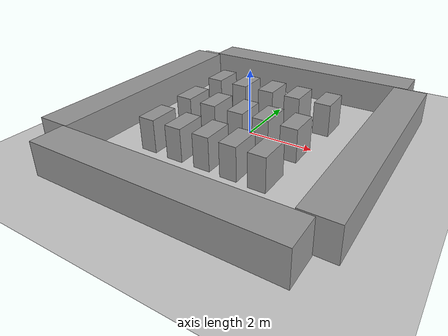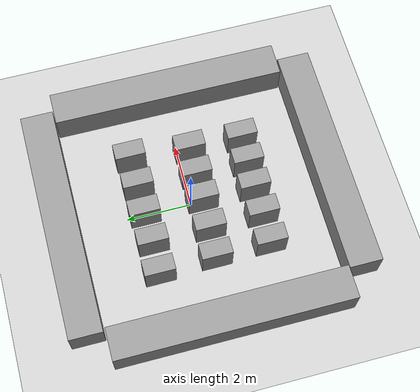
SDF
<sdf version="1.6">
 <world name="default">
  <light name="sun" type="directional">
   <pose>0 0 10 0 -0 0</pose>
   <diffuse>0.8 0.8 0.8 1</diffuse>
   <specular>0.2 0.2 0.2 1</specular>
   <attenuation>
    <range>1000</range>
    <constant>0.9</constant>
    <linear>0.01</linear>
    <quadratic>0.001</quadratic>
   </attenuation>
   <direction>-0.5 0.1 -0.9</direction>
  </light>
  <model name="ground_plane">
   <static>1</static>
   <link name="link">
    <collision name="collision">
     <geometry><plane><normal>0 0 1</normal><size>100 100</size></plane></geometry>
     <surface>
      <contact><collide_bitmask>65535</collide_bitmask></contact>
      <friction><ode><mu>100</mu><mu2>50</mu2></ode></friction>
     </surface>
    </collision>
    <visual name="visual">
     <cast_shadows>0</cast_shadows>
     <geometry><plane><normal>0 0 1</normal><size>100 100</size></plane></geometry>
     <material>
      <script><uri>file://media/materials/scripts/gazebo.material</uri><name>Gazebo/Grey</name></script>
     </material>
    </visual>
   </link>
  </model>
  <gravity>0 0 -9.8</gravity>
  <magnetic_field>6e-06 2.3e-05 -4.2e-05</magnetic_field>
  <atmosphere type="adiabatic"/>
  <physics name="default_physics" default="0" type="ode">
   <max_step_size>0.001</max_step_size>
   <real_time_factor>1</real_time_factor>
   <real_time_update_rate>1000</real_time_update_rate>
  </physics>
  <scene><ambient>0.4 0.4 0.4 1</ambient><background>0.7 0.7 0.7 1</background><shadows>1</shadows></scene>
  <spherical_coordinates>
   <surface_model>EARTH_WGS84</surface_model>
   <latitude_deg>0</latitude_deg>
   <longitude_deg>0</longitude_deg>
   <elevation>0</elevation>
   <heading_deg>0</heading_deg>
  </spherical_coordinates>
  <model name="unit_box">
   <pose>-1 1.44709 0.5 0 -0 3e-06</pose>
   <link name="link">
    <inertial>
     <mass>1</mass>
     <inertia>
      <ixx>0.166667</ixx>
      <ixy>0</ixy>
      <ixz>0</ixz>
      <iyy>0.166667</iyy>
      <iyz>0</iyz>
      <izz>0.166667</izz>
     </inertia>
    </inertial>
    <collision name="collision"><geometry><box><size>0.505028 0.924101 1</size></box></geometry></collision>
    <visual name="visual">
     <geometry><box><size>0.505028 0.924101 1</size></box></geometry>
     <material>
      <script><name>Gazebo/Grey</name><uri>file://media/materials/scripts/gazebo.material</uri></script>
     </material>
    </visual>
   </link>
  </model>
  <model name="unit_box_clone">
   <pose>-0.047301 1.46771 0.5 0 -0 3e-06</pose>
   <link name="link">
    <inertial>
     <mass>1</mass>
     <inertia>
      <ixx>0.166667</ixx>
      <ixy>0</ixy>
      <ixz>0</ixz>
      <iyy>0.166667</iyy>
      <iyz>0</iyz>
      <izz>0.166667</izz>
     </inertia>
    </inertial>
    <collision name="collision"><geometry><box><size>0.505028 0.924103 1</size></box></geometry></collision>
    <visual name="visual">
     <geometry><box><size>0.505028 0.924103 1</size></box></geometry>
     <material>
      <script><name>Gazebo/Grey</name><uri>file://media/materials/scripts/gazebo.material</uri></script>
     </material>
    </visual>
   </link>
  </model>
  <model name="unit_box_clone_0">
   <pose>0.866441 1.44857 0.5 0 -0 3e-06</pose>
   <link name="link">
    <inertial>
     <mass>1</mass>
     <inertia>
      <ixx>0.166667</ixx>
      <ixy>0</ixy>
      <ixz>0</ixz>
      <iyy>0.166667</iyy>
      <iyz>0</iyz>
      <izz>0.166667</izz>
     </inertia>
    </inertial>
    <collision name="collision"><geometry><box><size>0.505028 0.924103 1</size></box></geometry></collision>
    <visual name="visual">
     <geometry><box><size>0.505028 0.924103 1</size></box></geometry>
     <material>
      <script><name>Gazebo/Grey</name><uri>file://media/materials/scripts/gazebo.material</uri></script>
     </material>
    </visual>
   </link>
  </model>
  <model name="unit_box_clone_1">
   <pose>1.84425 1.46096 0.5 0 -0 3e-06</pose>
   <link name="link">
    <inertial>
     <mass>1</mass>
     <inertia>
      <ixx>0.166667</ixx>
      <ixy>0</ixy>
      <ixz>0</ixz>
      <iyy>0.166667</iyy>
      <iyz>0</iyz>
      <izz>0.166667</izz>
     </inertia>
    </inertial>
    <collision name="collision"><geometry><box><size>0.505028 0.924103 1</size></box></geometry></collision>
    <visual name="visual">
     <geometry><box><size>0.505028 0.924103 1</size></box></geometry>
     <material>
      <script><name>Gazebo/Grey</name><uri>file://media/materials/scripts/gazebo.material</uri></script>
     </material>
    </visual>
   </link>
  </model>
  <model name="unit_box_clone_2">
   <pose>-1.96392 1.47977 0.5 0 -0 3e-06</pose>
   <link name="link">
    <inertial>
     <mass>1</mass>
     <inertia>
      <ixx>0.166667</ixx>
      <ixy>0</ixy>
      <ixz>0</ixz>
      <iyy>0.166667</iyy>
      <iyz>0</iyz>
      <izz>0.166667</izz>
     </inertia>
    </inertial>
    <collision name="collision"><geometry><box><size>0.505028 0.924103 1</size></box></geometry></collision>
    <visual name="visual">
     <geometry><box><size>0.505028 0.924103 1</size></box></geometry>
     <material>
      <script><name>Gazebo/Grey</name><uri>file://media/materials/scripts/gazebo.material</uri></script>
     </material>
    </visual>
   </link>
  </model>
  <model name="unit_box_clone_1_clone">
   <pose>-1.90062 -0.244606 0.5 0 -0 3e-06</pose>
   <link name="link">
    <inertial>
     <mass>1</mass>
     <inertia>
      <ixx>0.166667</ixx>
      <ixy>0</ixy>
      <ixz>0</ixz>
      <iyy>0.166667</iyy>
      <iyz>0</iyz>
      <izz>0.166667</izz>
     </inertia>
    </inertial>
    <collision name="collision"><geometry><box><size>0.505028 0.924103 1</size></box></geometry></collision>
    <visual name="visual">
     <geometry><box><size>0.505028 0.924103 1</size></box></geometry>
     <material>
      <script><name>Gazebo/Grey</name><uri>file://media/materials/scripts/gazebo.material</uri></script>
     </material>
    </visual>
   </link>
  </model>
  <model name="unit_box_clone_1_clone_0">
   <pose>-0.984742 -0.300577 0.5 0 -0 3e-06</pose>
   <link name="link">
    <inertial>
     <mass>1</mass>
     <inertia>
      <ixx>0.166667</ixx>
      <ixy>0</ixy>
      <ixz>0</ixz>
      <iyy>0.166667</iyy>
      <iyz>0</iyz>
      <izz>0.166667</izz>
     </inertia>
    </inertial>
    <collision name="collision"><geometry><box><size>0.505028 0.924103 1</size></box></geometry></collision>
    <visual name="visual">
     <geometry><box><size>0.505028 0.924103 1</size></box></geometry>
     <material>
      <script><name>Gazebo/Grey</name><uri>file://media/materials/scripts/gazebo.material</uri></script>
     </material>
    </visual>
   </link>
  </model>
  <model name="unit_box_clone_1_clone_1">
   <pose>-0.033471 -0.32584 0.5 0 -0 3e-06</pose>
   <link name="link">
    <inertial>
     <mass>1</mass>
     <inertia>
      <ixx>0.166667</ixx>
      <ixy>0</ixy>
      <ixz>0</ixz>
      <iyy>0.166667</iyy>
      <iyz>0</iyz>
      <izz>0.166667</izz>
     </inertia>
    </inertial>
    <collision name="collision"><geometry><box><size>0.505028 0.924103 1</size></box></geometry></collision>
    <visual name="visual">
     <geometry><box><size>0.505028 0.924103 1</size></box></geometry>
     <material>
      <script><name>Gazebo/Grey</name><uri>file://media/materials/scripts/gazebo.material</uri></script>
     </material>
    </visual>
   </link>
  </model>
  <model name="unit_box_clone_1_clone_2">
   <pose>0.798051 -0.346734 0.5 0 -0 3e-06</pose>
   <link name="link">
    <inertial>
     <mass>1</mass>
     <inertia>
      <ixx>0.166667</ixx>
      <ixy>0</ixy>
      <ixz>0</ixz>
      <iyy>0.166667</iyy>
      <iyz>0</iyz>
      <izz>0.166667</izz>
     </inertia>
    </inertial>
    <collision name="collision"><geometry><box><size>0.505028 0.924103 1</size></box></geometry></collision>
    <visual name="visual">
     <geometry><box><size>0.505028 0.924103 1</size></box></geometry>
     <material>
      <script><name>Gazebo/Grey</name><uri>file://media/materials/scripts/gazebo.material</uri></script>
     </material>
    </visual>
   </link>
  </model>
  <model name="unit_box_clone_1_clone_3">
   <pose>1.67944 -0.374473 0.5 0 -0 3e-06</pose>
   <link name="link">
    <inertial>
     <mass>1</mass>
     <inertia>
      <ixx>0.166667</ixx>
      <ixy>0</ixy>
      <ixz>0</ixz>
      <iyy>0.166667</iyy>
      <iyz>0</iyz>
      <izz>0.166667</izz>
     </inertia>
    </inertial>
    <collision name="collision"><geometry><box><size>0.505028 0.924103 1</size></box></geometry></collision>
    <visual name="visual">
     <geometry><box><size>0.505028 0.924103 1</size></box></geometry>
     <material>
      <script><name>Gazebo/Grey</name><uri>file://media/materials/scripts/gazebo.material</uri></script>
     </material>
    </visual>
   </link>
  </model>
  <model name="unit_box_clone_1_clone_4">
   <pose>-1.87104 -1.91104 0.5 0 -0 3e-06</pose>
   <link name="link">
    <inertial>
     <mass>1</mass>
     <inertia>
      <ixx>0.166667</ixx>
      <ixy>0</ixy>
      <ixz>0</ixz>
      <iyy>0.166667</iyy>
      <iyz>0</iyz>
      <izz>0.166667</izz>
     </inertia>
    </inertial>
    <collision name="collision"><geometry><box><size>0.505028 0.924103 1</size></box></geometry></collision>
    <visual name="visual">
     <geometry><box><size>0.505028 0.924103 1</size></box></geometry>
     <material>
      <script><name>Gazebo/Grey</name><uri>file://media/materials/scripts/gazebo.material</uri></script>
     </material>
    </visual>
   </link>
  </model>
  <model name="unit_box_clone_1_clone_5">
   <pose>-0.937931 -1.93944 0.5 0 -0 3e-06</pose>
   <link name="link">
    <inertial>
     <mass>1</mass>
     <inertia>
      <ixx>0.166667</ixx>
      <ixy>0</ixy>
      <ixz>0</ixz>
      <iyy>0.166667</iyy>
      <iyz>0</iyz>
      <izz>0.166667</izz>
     </inertia>
    </inertial>
    <collision name="collision"><geometry><box><size>0.505028 0.924103 1</size></box></geometry></collision>
    <visual name="visual">
     <geometry><box><size>0.505028 0.924103 1</size></box></geometry>
     <material>
      <script><name>Gazebo/Grey</name><uri>file://media/materials/scripts/gazebo.material</uri></script>
     </material>
    </visual>
   </link>
  </model>
  <model name="unit_box_clone_1_clone_6">
   <pose>-0.043875 -1.93585 0.5 0 -0 3e-06</pose>
   <link name="link">
    <inertial>
     <mass>1</mass>
     <inertia>
      <ixx>0.166667</ixx>
      <ixy>0</ixy>
      <ixz>0</ixz>
      <iyy>0.166667</iyy>
      <iyz>0</iyz>
      <izz>0.166667</izz>
     </inertia>
    </inertial>
    <collision name="collision"><geometry><box><size>0.505028 0.924103 1</size></box></geometry></collision>
    <visual name="visual">
     <geometry><box><size>0.505028 0.924103 1</size></box></geometry>
     <material>
      <script><name>Gazebo/Grey</name><uri>file://media/materials/scripts/gazebo.material</uri></script>
     </material>
    </visual>
   </link>
  </model>
  <model name="unit_box_clone_1_clone_7">
   <pose>0.804874 -1.96781 0.5 0 -0 3e-06</pose>
   <link name="link">
    <inertial>
     <mass>1</mass>
     <inertia>
      <ixx>0.166667</ixx>
      <ixy>0</ixy>
      <ixz>0</ixz>
      <iyy>0.166667</iyy>
      <iyz>0</iyz>
      <izz>0.166667</izz>
     </inertia>
    </inertial>
    <collision name="collision"><geometry><box><size>0.505028 0.924103 1</size></box></geometry></collision>
    <visual name="visual">
     <geometry><box><size>0.505028 0.924103 1</size></box></geometry>
     <material>
      <script><name>Gazebo/Grey</name><uri>file://media/materials/scripts/gazebo.material</uri></script>
     </material>
    </visual>
   </link>
  </model>
  <model name="unit_box_clone_1_clone_8">
   <pose>1.65724 -2.00671 0.5 0 -0 3e-06</pose>
   <link name="link">
    <inertial>
     <mass>1</mass>
     <inertia>
      <ixx>0.166667</ixx>
      <ixy>0</ixy>
      <ixz>0</ixz>
      <iyy>0.166667</iyy>
      <iyz>0</iyz>
      <izz>0.166667</izz>
     </inertia>
    </inertial>
    <collision name="collision"><geometry><box><size>0.505028 0.924103 1</size></box></geometry></collision>
    <visual name="visual">
     <geometry><box><size>0.505028 0.924103 1</size></box></geometry>
     <material>
      <script><name>Gazebo/Grey</name><uri>file://media/materials/scripts/gazebo.material</uri></script>
     </material>
    </visual>
   </link>
  </model>
  <model name="unit_box_0">
   <pose>-3.86616 -0.210984 0.489482 -0.002936 -2e-06 -0.00069</pose>
   <link name="link">
    <inertial>
     <mass>1</mass>
     <inertia>
      <ixx>0.166667</ixx>
      <ixy>0</ixy>
      <ixz>0</ixz>
      <iyy>0.166667</iyy>
      <iyz>0</iyz>
      <izz>0.166667</izz>
     </inertia>
    </inertial>
    <collision name="collision"><geometry><box><size>1 7.16952 1</size></box></geometry></collision>
    <visual name="visual">
     <geometry><box><size>1 7.16952 1</size></box></geometry>
     <material>
      <script><name>Gazebo/Grey</name><uri>file://media/materials/scripts/gazebo.material</uri></script>
     </material>
    </visual>
   </link>
  </model>
  <model name="unit_box_0_clone">
   <pose>3.77164 -0.17233 0.489482 0.002936 2e-06 -0.00069</pose>
   <link name="link">
    <inertial>
     <mass>1</mass>
     <inertia>
      <ixx>0.166667</ixx>
      <ixy>0</ixy>
      <ixz>0</ixz>
      <iyy>0.166667</iyy>
      <iyz>0</iyz>
      <izz>0.166667</izz>
     </inertia>
    </inertial>
    <collision name="collision"><geometry><box><size>1 7.16953 1</size></box></geometry></collision>
    <visual name="visual">
     <geometry><box><size>1 7.16953 1</size></box></geometry>
     <material>
      <script><name>Gazebo/Grey</name><uri>file://media/materials/scripts/gazebo.material</uri></script>
     </material>
    </visual>
   </link>
  </model>
  <model name="unit_box_0_clone_0">
   <pose>0.106205 3.94124 0.489482 -0.002936 2e-06 1.57153</pose>
   <link name="link">
    <inertial>
     <mass>1</mass>
     <inertia>
      <ixx>0.166667</ixx>
      <ixy>0</ixy>
      <ixz>0</ixz>
      <iyy>0.166667</iyy>
      <iyz>0</iyz>
      <izz>0.166667</izz>
     </inertia>
    </inertial>
    <collision name="collision"><geometry><box><size>1 7.16953 1</size></box></geometry></collision>
    <visual name="visual">
     <geometry><box><size>1 7.16953 1</size></box></geometry>
     <material>
      <script><name>Gazebo/Grey</name><uri>file://media/materials/scripts/gazebo.material</uri></script>
     </material>
    </visual>
   </link>
  </model>
  <model name="unit_box_0_clone_0_clone">
   <pose>0.127218 -4.30199 0.489482 0.002936 -2e-06 1.57153</pose>
   <link name="link">
    <inertial>
     <mass>1</mass>
     <inertia>
      <ixx>0.166667</ixx>
      <ixy>0</ixy>
      <ixz>0</ixz>
      <iyy>0.166667</iyy>
      <iyz>0</iyz>
      <izz>0.166667</izz>
     </inertia>
    </inertial>
    <collision name="collision"><geometry><box><size>1 7.16953 1</size></box></geometry></collision>
    <visual name="visual">
     <geometry><box><size>1 7.16953 1</size></box></geometry>
     <material>
      <script><name>Gazebo/Grey</name><uri>file://media/materials/scripts/gazebo.material</uri></script>
     </material>
    </visual>
   </link>
  </model>
 </world>
</sdf>
